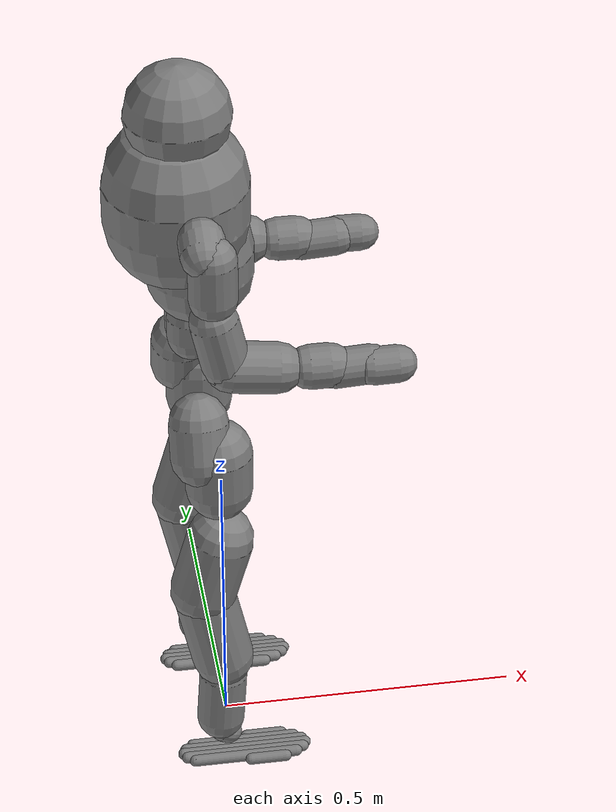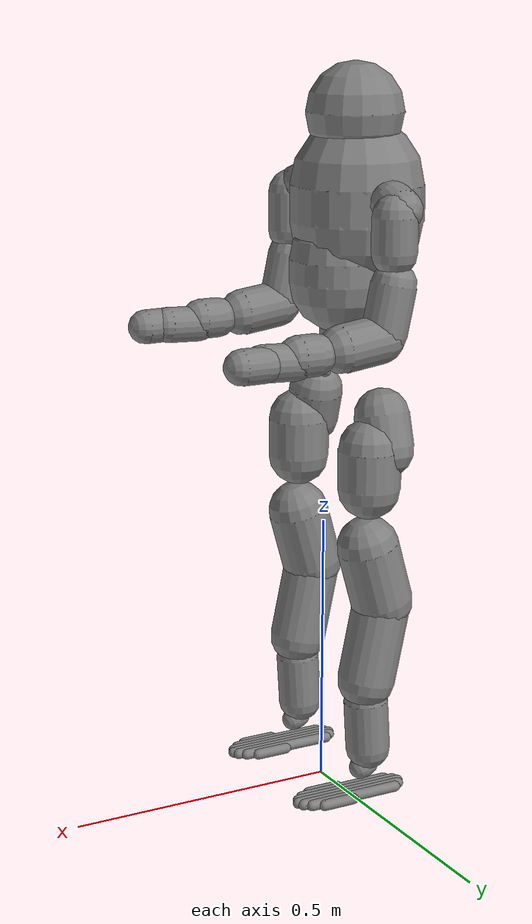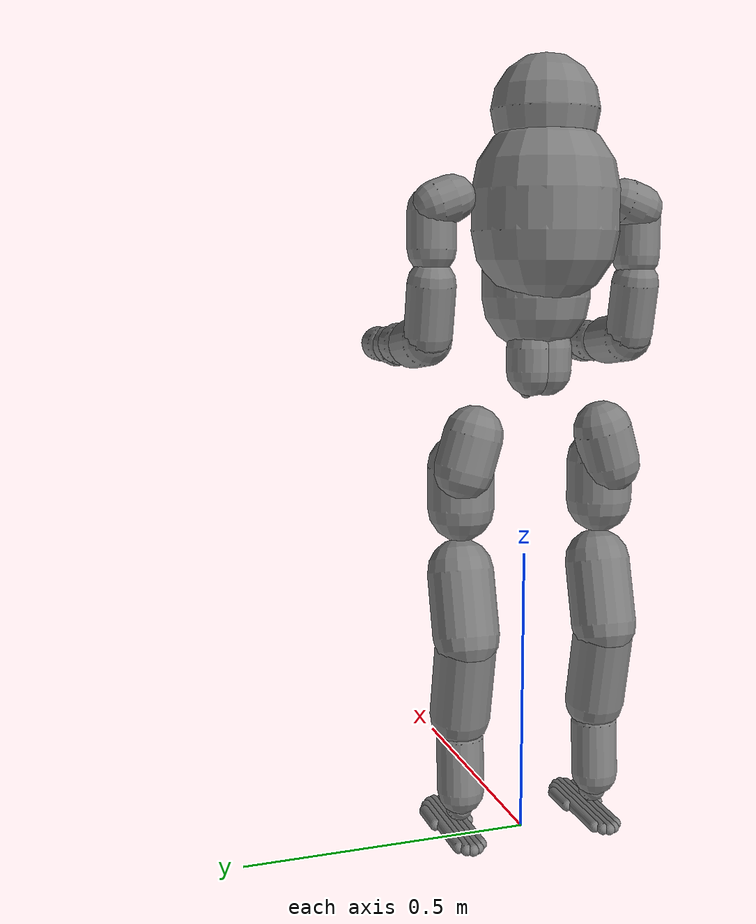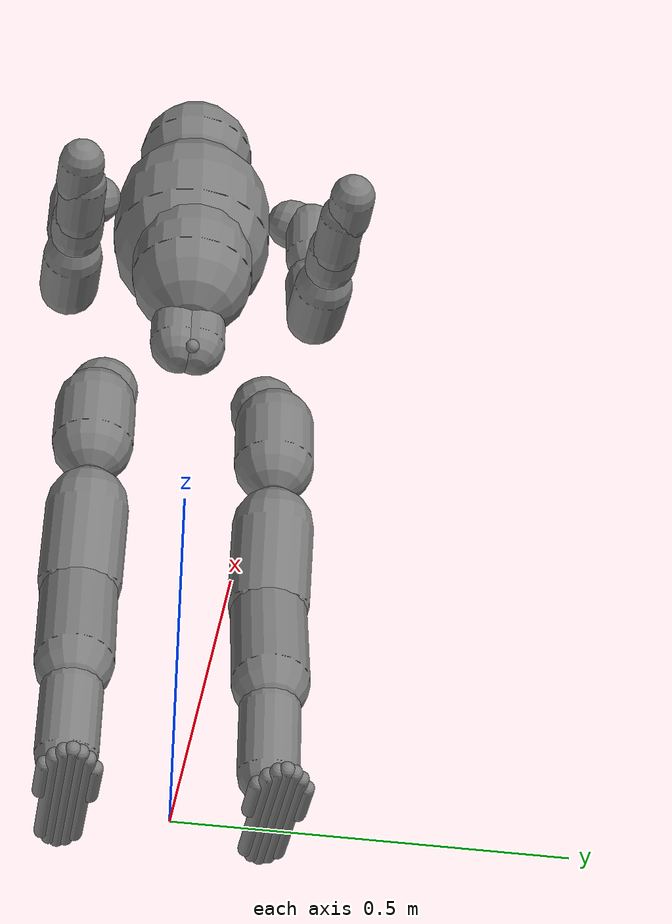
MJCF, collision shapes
<?xml version="1.0" encoding="utf-8"?>
<mujoco model="rp1.3.2">
  <compiler angle="radian" meshdir="../" autolimits="true" eulerseq="zyx" balanceinertia="true"/>
  <option timestep="0.005" integrator="implicitfast" iterations="100" solver="Newton" gravity="0 0 -9.81">
    <flag frictionloss="enable"/>
  </option>
  <size memory="32M"/>
  <default>
    <default class="RP1.3.2">
      <joint damping="0.01" frictionloss="0.01" armature="0.01"/>
      <default class="visual">
        <geom type="mesh" contype="0" conaffinity="0" group="2"/>
      </default>
      <default class="collision">
        <geom group="3" condim="4" contype="1" conaffinity="1" solref="0.01 1" friction="0.9 0.2 0.2"/>
      </default>
    </default>
  </default>
  <worldbody>
    <body name="base_link" pos="0 0 0.78" quat="1 0 0 0" childclass="RP1.3.2">
      <site name="imu" size="0.01" pos="0.0 0 0.0"/>
      <freejoint name="base_link_freejoint"/>
      <inertial pos="-0.03786057 -0.00301243 -0.04479345" mass="3.295" fullinertia="0.00960796 0.00699457 0.00815508 0.00000112 -0.00015116 -0.00000270"/>
      <geom type="mesh" class="visual" pos="0 0 0" quat="1 0 0 0" mesh="base_link" material="base_link_material"/>
      <!-- LEFT LEG -->
      <body name="left_hip_pitch_link" pos="-0.03843 0.062987 -0.051639" quat="1 0 0 0">
        <joint axis="0 1 0" name="left_hip_pitch_joint" type="hinge" range="-2.86 2.86" armature="0.029085325"/>
        <inertial pos="-0.00326988 0.05886633 -0.05765170" mass="1.83930168" fullinertia="0.00338343 0.00286182 0.00254132 0.00000610 -0.00000685 0.00030016"/>
        <geom type="mesh" class="visual" pos="0 0 0" quat="1 0 0 0" mesh="left_hip_pitch_link" material="left_hip_pitch_material"/>
        <geom name="left_hip_pitch_collision" type="capsule" class="collision" size="0.04970" fromto="-0.01122 0.06756 -0.06890 -0.01122 0.05070 -0.01118"/>
        <body name="left_hip_roll_link" pos="0.031915 0.061254 -0.060672" quat="1 0 0 0">
          <joint axis="1 0 0" name="left_hip_roll_joint" type="hinge" range="-0.74 2.6" armature="0.029085325"/>
          <inertial pos="-0.00518991 -0.00003499 -0.08084106" mass="1.473" fullinertia="0.00376408 0.00382823 0.00192275 0.00000313 -0.00065554 -0.00000256"/>
          <geom type="mesh" class="visual" pos="0 0 0" quat="1 0 0 0" mesh="left_hip_roll_link" material="left_hip_roll_material"/>
          <geom name="left_hip_roll_collision" type="capsule" class="collision" size="0.05622" fromto="-0.01270 0 -0.07578 -0.01270 0 -0.00658"/>
          <body name="left_hip_yaw_link" pos="-0.012698 0 -0.129" quat="1 0 0 0">
            <joint axis="0 0 -1" name="left_hip_yaw_joint" type="hinge" range="-2.76 2.76" armature="0.029085325"/>
            <inertial pos="-0.01959270 -0.00023200 -0.12376414" mass="2.483" fullinertia="0.01126838 0.01225761 0.00388513 0.00001684 -0.00196020 0.00002442"/>
            <geom type="mesh" class="visual" pos="0 0 0" quat="1 0 0 0" mesh="left_hip_yaw_link" material="left_hip_yaw_material"/>
            <geom name="left_hip_yaw_collision" type="capsule" class="collision" size="0.05622" fromto="-0.03046 0 -0.16235 -0.00001 0 -0.05622"/>
            <body name="left_knee_link" pos="-0.033201 -0.030809 -0.16509" quat="1 0 0 0">
              <joint axis="0 -1 0" name="left_knee_joint" type="hinge" range="-2.83 0.06" armature="0.029085325"/>
              <inertial pos="0.03105182 0.03046366 -0.13362250" mass="2.557" fullinertia="0.01819333 0.01828843 0.00291276 -0.00006969 -0.00019845 0.00002464"/>
              <geom type="mesh" class="visual" pos="0 0 0" quat="1 0 0 0" mesh="left_knee_link" material="left_knee_material"/>
              <geom name="left_knee_upper_collision" type="capsule" class="collision" size="0.0520" fromto="0.0330 0.03081 -0.1450 0.0030 0.03081 -0.0040"/>
              <geom name="left_knee_lower_collision" type="capsule" class="collision" size="0.0405" fromto="0.0270 0.03081 -0.2780 0.0330 0.03081 -0.1850"/>
              <body name="left_ankle_pitch_link" pos="0.03131 0.030811 -0.30533" quat="1 0 0 0">
                <joint axis="0 1 0" name="left_ankle_pitch_joint" type="hinge" range="-0.78 0.61" armature="0.01" frictionloss="0.05"/>
                <inertial pos="0.00126332 0.00000000 -0.01319163" mass="0.16605731" fullinertia="0.00003624 0.00004292 0.00002407 0.00000000 0.00000148 0.00000000"/>
                <geom type="mesh" class="visual" pos="0 0 0" quat="1 0 0 0" mesh="left_ankle_pitch_link" material="left_ankle_pitch_material"/>
                <geom name="left_ankle_pitch_collision" type="capsule" class="collision" size="0.02150" fromto="-0.00145 0 -0.00614 0.00959 0 -0.01051"/>
                <body name="left_ankle_roll_link" pos="0.013067 0 -0.018922" quat="1 0 0 0">
                  <joint axis="0.999993677858222 0 0.00355587451777954" name="left_ankle_roll_joint" type="hinge" range="-0.26 0.26" armature="0.01" frictionloss="0.05"/>
                  <inertial pos="0.008711 -0.000002 -0.021633" mass="0.6430" fullinertia="0.000361 0.001920 0.002002 0.000000 0.000123 0.000000"/>
                  <geom type="mesh" class="visual" pos="0 0 0" quat="1 0 0 0" mesh="left_ankle_roll_link" material="left_ankle_roll_material"/>
                  <geom name="left_foot_toe_neg_collision" type="capsule" class="collision" size="0.01" fromto="0.03 -0.03 -0.035 0.09 -0.03 -0.035"/>
                  <geom name="left_foot_outer_neg_collision" type="capsule" class="collision" size="0.01" fromto="-0.065 -0.02 -0.035 0.11 -0.02 -0.035"/>
                  <geom name="left_foot_inner_neg_collision" type="capsule" class="collision" size="0.01" fromto="-0.0775 -0.01 -0.035 0.1225 -0.01 -0.035"/>
                  <geom name="left_foot_center_collision" type="capsule" class="collision" size="0.01" fromto="-0.0825 0 -0.035 0.1275 0 -0.035"/>
                  <geom name="left_foot_inner_pos_collision" type="capsule" class="collision" size="0.01" fromto="-0.0775 0.01 -0.035 0.1225 0.01 -0.035"/>
                  <geom name="left_foot_outer_pos_collision" type="capsule" class="collision" size="0.01" fromto="-0.065 0.02 -0.035 0.11 0.02 -0.035"/>
                  <geom name="left_foot_toe_pos_collision" type="capsule" class="collision" size="0.01" fromto="0.03 0.03 -0.035 0.09 0.03 -0.035"/>
                </body>
              </body>
            </body>
          </body>
        </body>
      </body>
      <!-- RIGHT LEG -->
      <body name="right_hip_pitch_link" pos="-0.03843 -0.069013 -0.051639" quat="1 0 0 0">
        <joint axis="0 -1 0" name="right_hip_pitch_joint" type="hinge" range="-2.86 2.86" armature="0.029085325"/>
        <inertial pos="-0.00326831 -0.05867998 -0.05764945" mass="1.84174869" fullinertia="0.00339042 0.00287691 0.00253348 0.00000130 -0.00000978 -0.00029218"/>
        <geom type="mesh" class="visual" pos="0 0 0" quat="1 0 0 0" mesh="right_hip_pitch_link" material="right_hip_pitch_material"/>
        <geom name="right_hip_pitch_collision" type="capsule" class="collision" size="0.04970" fromto="-0.01122 -0.06756 -0.06890 -0.01122 -0.05070 -0.01118"/>
        <body name="right_hip_roll_link" pos="0.031915 -0.061254 -0.060672" quat="1 0 0 0">
          <joint axis="1 0 0" name="right_hip_roll_joint" type="hinge" range="-2.6 0.74" armature="0.029085325"/>
          <inertial pos="-0.00518991 -0.00003499 -0.08084106" mass="1.473" fullinertia="0.00376408 0.00382823 0.00192275 0.00000313 -0.00065554 -0.00000256"/>
          <geom type="mesh" class="visual" pos="0 0 0" quat="1 0 0 0" mesh="right_hip_roll_link" material="right_hip_roll_material"/>
          <geom name="right_hip_roll_collision" type="capsule" class="collision" size="0.05622" fromto="-0.01270 0 -0.07578 -0.01270 0 -0.00658"/>
          <body name="right_hip_yaw_link" pos="-0.012698 0 -0.129" quat="1 0 0 0">
            <joint axis="0 0 -1" name="right_hip_yaw_joint" type="hinge" range="-2.76 2.76" armature="0.029085325"/>
            <inertial pos="-0.01958069 0.00023065 -0.12376565" mass="2.483" fullinertia="0.01132547 0.01225907 0.00383024 -0.00001670 -0.00196009 -0.00002438"/>
            <geom type="mesh" class="visual" pos="0 0 0" quat="1 0 0 0" mesh="right_hip_yaw_link" material="right_hip_yaw_material"/>
            <geom name="right_hip_yaw_collision" type="capsule" class="collision" size="0.05622" fromto="-0.03046 0 -0.16235 -0.00001 0 -0.05622"/>
            <body name="right_knee_link" pos="-0.0332010004232152 0.0308089665012395 -0.165090022909223" quat="1 0 0 0">
              <joint axis="0 1 0" name="right_knee_joint" type="hinge" range="-0.06 2.83" armature="0.029085325"/>
              <inertial pos="0.03115290 -0.03066848 -0.13404559" mass="2.557" fullinertia="0.01802753 0.01813266 0.00288242 0.00006186 -0.00023263 0.00002714"/>
              <geom type="mesh" class="visual" pos="0 0 0" quat="1 0 0 0" mesh="right_knee_link" material="right_knee_material"/>
              <geom name="right_knee_upper_collision" type="capsule" class="collision" size="0.0520" fromto="0.0330 -0.03081 -0.1450 0.0030 -0.03081 -0.0040"/>
              <geom name="right_knee_lower_collision" type="capsule" class="collision" size="0.0405" fromto="0.0270 -0.03081 -0.2780 0.0330 -0.03081 -0.1850"/>
              <body name="right_ankle_pitch_link" pos="0.03131 -0.030809 -0.30533" quat="1 0 0 0">
                <joint axis="0 1 0" name="right_ankle_pitch_joint" type="hinge" range="-0.78 0.61" armature="0.01" frictionloss="0.05"/>
                <inertial pos="0.00126328 0.00000000 -0.01319163" mass="0.16605731" fullinertia="0.00003624 0.00004292 0.00002407 0.00000000 0.00000148 0.00000000"/>
                <geom type="mesh" class="visual" pos="0 0 0" quat="1 0 0 0" mesh="right_ankle_pitch_link" material="right_ankle_pitch_material"/>
                <geom name="right_ankle_pitch_collision" type="capsule" class="collision" size="0.02150" fromto="-0.00145 0 -0.00614 0.00959 0 -0.01051"/>
                <body name="right_ankle_roll_link" pos="0.013067 0 -0.018922" quat="1 0 0 0">
                  <joint axis="0.999993677858222 0 0.00355587451777984" name="right_ankle_roll_joint" type="hinge" range="-0.26 0.26" armature="0.01" frictionloss="0.05"/>
                  <inertial pos="0.008711 -0.000002 -0.021633" mass="0.6430" fullinertia="0.000361 0.001920 0.002002 0.000000 0.000123 0.000000"/>
                  <geom type="mesh" class="visual" pos="0 0 0" quat="1 0 0 0" mesh="right_ankle_roll_link" material="right_ankle_roll_material"/>
                  <geom name="right_foot_toe_neg_collision" type="capsule" class="collision" size="0.01" fromto="0.03 -0.03 -0.035 0.09 -0.03 -0.035"/>
                  <geom name="right_foot_outer_neg_collision" type="capsule" class="collision" size="0.01" fromto="-0.065 -0.02 -0.035 0.11 -0.02 -0.035"/>
                  <geom name="right_foot_inner_neg_collision" type="capsule" class="collision" size="0.01" fromto="-0.0775 -0.01 -0.035 0.1225 -0.01 -0.035"/>
                  <geom name="right_foot_center_collision" type="capsule" class="collision" size="0.01" fromto="-0.0825 0 -0.035 0.1275 0 -0.035"/>
                  <geom name="right_foot_inner_pos_collision" type="capsule" class="collision" size="0.01" fromto="-0.0775 0.01 -0.035 0.1225 0.01 -0.035"/>
                  <geom name="right_foot_outer_pos_collision" type="capsule" class="collision" size="0.01" fromto="-0.065 0.02 -0.035 0.11 0.02 -0.035"/>
                  <geom name="right_foot_toe_pos_collision" type="capsule" class="collision" size="0.01" fromto="0.03 0.03 -0.035 0.09 0.03 -0.035"/>
                </body>
              </body>
            </body>
          </body>
        </body>
      </body>
      <!-- WAIST -->
      <body name="waist_roll_link" pos="-0.00757994881845658 -0.00301269924435144 0.0529838303646947" quat="1 0 0 0">
        <joint axis="1 0 0" name="waist_roll_joint" type="hinge" range="-0.7 0.7" armature="0.029085325"/>
        <inertial pos="-0.03058205 0.00004115 -0.00029517" mass="1.53201882" fullinertia="0.00221249 0.00166198 0.00164327 -0.00000117 -0.00000777 -0.00000329"/>
        <geom type="mesh" class="visual" pos="0 0 0" quat="1 0 0 0" mesh="waist_roll_link" material="waist_roll_material"/>
        <geom name="waist_roll_neg_y_collision" type="capsule" class="collision" size="0.04164" fromto="-0.03686 -0.01336 -0.01336 -0.03686 -0.01336 0.02536"/>
        <geom name="waist_roll_pos_y_collision" type="capsule" class="collision" size="0.04164" fromto="-0.03686 0.01336 -0.01336 -0.03686 0.01336 0.02536"/>
        <body name="waist_yaw_link" pos="-0.0308449999997339 0 0.0679999999997294" quat="1 0 0 0">
          <joint axis="0 0 -1" name="waist_yaw_joint" type="hinge" range="-2.91 2.91" armature="0.029085325"/>
          <inertial pos="-0.001424 0.000080 0.128866" mass="8.3430" fullinertia="0.109179 0.092853 0.041145 -0.000027 0.002082 -0.000013"/>
          <geom type="mesh" class="visual" pos="0 0 0" quat="1 0 0 0" mesh="waist_yaw_link" material="waist_yaw_material"/>
          <geom name="torso_lower_collision" type="capsule" class="collision" size="0.090" fromto="0.0100 0 0.0394 0.0100 0 0.0800"/>
          <geom name="torso_middle_collision" type="capsule" class="collision" size="0.120" fromto="-0.0244 0 0.1450 -0.0244 0 0.2100"/>
          <geom name="torso_upper_collision" type="capsule" class="collision" size="0.088" fromto="-0.0185 0 0.3350 -0.0185 0 0.33668"/>
          <!-- LEFT ARM -->
          <body name="left_shoulder_pitch_link" pos="0 0.116496194698121 0.19848715574272" quat="1 0 0 0">
            <joint axis="0 0.99619 0.087156" name="left_shoulder_pitch_joint" type="hinge" range="-3.4 2.35" armature="0.01"/>
            <inertial pos="-0.00227488 0.05877203 -0.01145894" mass="0.82850012" fullinertia="0.00077624 0.00060519 0.00074547 0.00001858 -0.00000678 0.00008598"/>
            <geom type="mesh" class="visual" pos="0 0 0" quat="1 0 0 0" mesh="left_shoulder_pitch_link" material="left_shoulder_pitch_material"/>
            <geom name="left_shoulder_pitch_collision" type="capsule" class="collision" size="0.03808" fromto="-0.00326 0.03582 -0.00238 -0.00326 0.06284 -0.01210"/>
            <body name="left_shoulder_roll_link" pos="0.0287432951006891 0.0653494445514435 -0.014608906526987" quat="1 0 0 0">
              <joint axis="1 0 0" name="left_shoulder_roll_joint" type="hinge" range="-0.47 2.9" armature="0.01"/>
              <inertial pos="-0.01613398 0.00000564 -0.06609383" mass="0.76916758" fullinertia="0.00079857 0.00081142 0.00051033 0.00000012 -0.00012702 -0.00000004"/>
              <geom type="mesh" class="visual" pos="0 0 0" quat="1 0 0 0" mesh="left_shoulder_roll_link" material="left_shoulder_roll_material"/>
              <geom name="left_shoulder_roll_collision" type="capsule" class="collision" size="0.04000" fromto="-0.01906 0 -0.06800 -0.01906 0 -0.00656"/>
              <body name="left_shoulder_yaw_link" pos="-0.0190574930004302 0 -0.105000039994097" quat="1 0 0 0">
                <joint axis="0 0 -1" name="left_shoulder_yaw_joint" type="hinge" range="-2.87 2.87" armature="0.01"/>
                <inertial pos="0.01447570 -0.00112029 -0.08587480" mass="0.95227320" fullinertia="0.00179605 0.00188468 0.00081430 -0.00000292 0.00031386 -0.00001579"/>
                <geom type="mesh" class="visual" pos="0 0 0" quat="1 0 0 0" mesh="left_shoulder_yaw_link" material="left_shoulder_yaw_material"/>
                <geom name="left_shoulder_yaw_collision" type="capsule" class="collision" size="0.04008" fromto="0.01816 0.00008 -0.10150 0.00008 0.00008 -0.01708"/>
                <body name="left_elbow_link" pos="0.020796 -0.031888 -0.10414" quat="1 0 0 0">
                  <joint axis="0 -1 0" name="left_elbow_joint" type="hinge" range="-1.6 1.24" armature="0.01"/>
                  <inertial pos="0.07222795 0.03107894 -0.01809537" mass="0.77922872" fullinertia="0.00060310 0.00112121 0.00118539 -0.00005057 0.00006993 0.00001181"/>
                  <geom type="mesh" class="visual" pos="0 0 0" quat="1 0 0 0" mesh="left_elbow_link" material="left_elbow_material"/>
                  <geom name="left_elbow_collision" type="capsule" class="collision" size="0.04220" fromto="0.00487 0.03186 -0.00484 0.07959 0.03186 -0.01404"/>
                  <body name="left_wrist_roll_link" pos="0.116093381994033 0.031859446289993 -0.0187927584979322" quat="1 0 0 0">
                    <joint axis="1 0 0" name="left_wrist_roll_joint" type="hinge" range="-2.56 2.56" armature="0.01"/>
                    <inertial pos="0.01827024 0.00000000 0.01027564" mass="0.16115938" fullinertia="0.00013435 0.00015892 0.00014383 0.00000000 -0.00003765 0.00000000"/>
                    <geom type="mesh" class="visual" pos="0 0 0" quat="1 0 0 0" mesh="left_wrist_roll_link" material="left_wrist_roll_material"/>
                    <geom name="left_wrist_roll_collision" type="capsule" class="collision" size="0.03650" fromto="0.01445 0 0 0.04795 0 0"/>
                    <body name="left_wrist_yaw_link" pos="0.053 0 0.020701" quat="1 0 0 0">
                      <joint axis="0 0 -1" name="left_wrist_yaw_joint" type="hinge" range="-1.22 1.22" armature="0.01"/>
                      <inertial pos="0.03084697 0.00040090 -0.02788482" mass="1.03494219" fullinertia="0.00054429 0.00151988 0.00149427 -0.00001216 -0.00005099 -0.00000019"/>
                      <geom type="mesh" class="visual" pos="0 0 0" quat="1 0 0 0" mesh="left_wrist_yaw_link" material="left_wrist_yaw_material"/>
                      <geom name="left_wrist_yaw_collision" type="capsule" class="collision" size="0.03245" fromto="0 0 -0.02868 0.06213 0 -0.02538"/>
                      <body name="left_wrist_pitch_link" pos="0.062136 0.029458 -0.026067" quat="1 0 0 0">
                        <joint axis="0 1 0" name="left_wrist_pitch_joint" type="hinge" range="-1.22 1.22" armature="0.01"/>
                        <inertial pos="0.02303536 -0.00952864 0.00000000" mass="0.07319805" fullinertia="0.00003995 0.00005202 0.00006476 0.00001970 0.00000000 0.00000000"/>
                        <geom type="mesh" class="visual" pos="0 0 0" quat="1 0 0 0" mesh="left_wrist_pitch_link" material="left_wrist_pitch_material"/>
                        <geom name="left_wrist_pitch_collision" type="capsule" class="collision" size="0.03100" fromto="0 -0.02300 0 0.04200 -0.02372 0"/>
                      </body>
                    </body>
                  </body>
                </body>
              </body>
            </body>
          </body>
          <!-- RIGHT ARM -->
          <body name="right_shoulder_pitch_link" pos="0 -0.116496194698064 0.198487155742749" quat="1 0 0 0">
            <joint axis="0 -0.99619 0.087156" name="right_shoulder_pitch_joint" type="hinge" range="-2.35 3.4" armature="0.01"/>
            <inertial pos="-0.00227477 -0.05856201 -0.01145858" mass="0.82850796" fullinertia="0.00077392 0.00060520 0.00074316 -0.00001370 -0.00000678 -0.00008562"/>
            <geom type="mesh" class="visual" pos="0 0 0" quat="1 0 0 0" mesh="right_shoulder_pitch_link" material="right_shoulder_pitch_material"/>
            <geom name="right_shoulder_pitch_collision" type="capsule" class="collision" size="0.03808" fromto="-0.00326 -0.06284 -0.01210 -0.00326 -0.03582 -0.00238"/>
            <body name="right_shoulder_roll_link" pos="0.0287432951007422 -0.0653494445235536 -0.0146089065305009" quat="1 0 0 0">
              <joint axis="1 0 0" name="right_shoulder_roll_joint" type="hinge" range="-2.9 0.47" armature="0.01"/>
              <inertial pos="-0.01626203 0.00000539 -0.06810375" mass="0.80442734" fullinertia="0.00087815 0.00088810 0.00052415 0.00000011 -0.00013154 -0.00000005"/>
              <geom type="mesh" class="visual" pos="0 0 0" quat="1 0 0 0" mesh="right_shoulder_roll_link" material="right_shoulder_roll_material"/>
              <geom name="right_shoulder_roll_collision" type="capsule" class="collision" size="0.04000" fromto="-0.01906 0 -0.07700 -0.01906 0 -0.00656"/>
              <body name="right_shoulder_yaw_link" pos="-0.0190573923593691 0 -0.105000126276637" quat="1 0 0 0">
                <joint axis="0 0 -1" name="right_shoulder_yaw_joint" type="hinge" range="-2.87 2.87" armature="0.01"/>
                <inertial pos="0.01430772 0.00112150 -0.08592529" mass="0.95225273" fullinertia="0.00179792 0.00188417 0.00081194 -0.00000160 0.00031064 0.00001448"/>
                <geom type="mesh" class="visual" pos="0 0 0" quat="1 0 0 0" mesh="right_shoulder_yaw_link" material="right_shoulder_yaw_material"/>
                <geom name="right_shoulder_yaw_collision" type="capsule" class="collision" size="0.04008" fromto="0.01816 -0.00008 -0.10150 0.00008 -0.00008 -0.01708"/>
                <body name="right_elbow_link" pos="0.0207956801502895 0.031887525882762 -0.104135222723484" quat="1 0 0 0">
                  <joint axis="0 1 0" name="right_elbow_joint" type="hinge" range="-1.24 1.6" armature="0.01"/>
                  <inertial pos="0.07222795 -0.03090613 -0.01799316" mass="0.77922499" fullinertia="0.00060275 0.00112238 0.00118388 0.00005257 0.00007112 -0.00001226"/>
                  <geom type="mesh" class="visual" pos="0 0 0" quat="1 0 0 0" mesh="right_elbow_link" material="right_elbow_material"/>
                  <geom name="right_elbow_collision" type="capsule" class="collision" size="0.04220" fromto="0.00487 -0.03186 -0.00484 0.07959 -0.03186 -0.01404"/>
                  <body name="right_wrist_roll_link" pos="0.11609334409225 -0.031859369715491 -0.0187927299688337" quat="1 0 0 0">
                    <joint axis="1 0 0" name="right_wrist_roll_joint" type="hinge" range="-2.56 2.56" armature="0.01"/>
                    <inertial pos="0.01827024 0.00000000 0.01027555" mass="0.16115938" fullinertia="0.00013435 0.00015892 0.00014383 0.00000000 -0.00003765 0.00000000"/>
                    <geom type="mesh" class="visual" pos="0 0 0" quat="1 0 0 0" mesh="right_wrist_roll_link" material="right_wrist_roll_material"/>
                    <geom name="right_wrist_roll_collision" type="capsule" class="collision" size="0.03650" fromto="0.01445 0 0 0.04795 0 0"/>
                    <body name="right_wrist_yaw_link" pos="0.053 0 0.020701" quat="1 0 0 0">
                      <joint axis="0 0 -1" name="right_wrist_yaw_joint" type="hinge" range="-1.22 1.22" armature="0.01"/>
                      <inertial pos="0.03084434 -0.00041157 -0.02787816" mass="1.03493727" fullinertia="0.00054424 0.00152006 0.00149435 0.00001173 -0.00005112 0.00000048"/>
                      <geom type="mesh" class="visual" pos="0 0 0" quat="1 0 0 0" mesh="right_wrist_yaw_link" material="right_wrist_yaw_material"/>
                      <geom name="right_wrist_yaw_collision" type="capsule" class="collision" size="0.03245" fromto="0 0 -0.02868 0.06213 0 -0.02567"/>
                      <body name="right_wrist_pitch_link" pos="0.062136 -0.029458 -0.026067" quat="1 0 0 0">
                        <joint axis="0 -1 0" name="right_wrist_pitch_joint" type="hinge" range="-1.22 1.22" armature="0.01"/>
                        <inertial pos="0.02282168 0.00967600 0.00000000" mass="0.07221264" fullinertia="0.00003980 0.00005175 0.00006439 -0.00001987 0.00000000 0.00000000"/>
                        <geom type="mesh" class="visual" pos="0 0 0" quat="1 0 0 0" mesh="right_wrist_pitch_link" material="right_wrist_pitch_material"/>
                        <geom name="right_wrist_pitch_collision" type="capsule" class="collision" size="0.03100" fromto="0 0.02300 0 0.04200 0.02372 0"/>
                      </body>
                    </body>
                  </body>
                </body>
              </body>
            </body>
          </body>
        </body>
      </body>
    </body>
  </worldbody>
  <asset>
    <mesh file="meshes/base_link.STL"/>
    <mesh file="meshes/left_hip_pitch_link.STL"/>
    <mesh file="meshes/left_hip_roll_link.STL"/>
    <mesh file="meshes/left_hip_yaw_link.STL"/>
    <mesh file="meshes/left_knee_link.STL"/>
    <mesh file="meshes/left_ankle_pitch_link.STL"/>
    <mesh file="meshes/left_ankle_roll_link.STL"/>
    <mesh file="meshes/right_hip_pitch_link.STL"/>
    <mesh file="meshes/right_hip_roll_link.STL"/>
    <mesh file="meshes/right_hip_yaw_link.STL"/>
    <mesh file="meshes/right_knee_link.STL"/>
    <mesh file="meshes/right_ankle_pitch_link.STL"/>
    <mesh file="meshes/right_ankle_roll_link.STL"/>
    <mesh file="meshes/waist_roll_link.STL"/>
    <mesh file="meshes/waist_yaw_link.STL"/>
    <mesh file="meshes/left_shoulder_pitch_link.STL"/>
    <mesh file="meshes/left_shoulder_roll_link.STL"/>
    <mesh file="meshes/left_shoulder_yaw_link.STL"/>
    <mesh file="meshes/left_elbow_link.STL"/>
    <mesh file="meshes/left_wrist_roll_link.STL"/>
    <mesh file="meshes/left_wrist_pitch_link.STL"/>
    <mesh file="meshes/left_wrist_yaw_link.STL"/>
    <mesh file="meshes/right_shoulder_pitch_link.STL"/>
    <mesh file="meshes/right_shoulder_roll_link.STL"/>
    <mesh file="meshes/right_shoulder_yaw_link.STL"/>
    <mesh file="meshes/right_elbow_link.STL"/>
    <mesh file="meshes/right_wrist_roll_link.STL"/>
    <mesh file="meshes/right_wrist_pitch_link.STL"/>
    <mesh file="meshes/right_wrist_yaw_link.STL"/>
    <material name="base_link_material" rgba="0.752941 0.752941 0.752941 1"/>
    <material name="left_hip_pitch_material" rgba="0.752941 0.752941 0.752941 1"/>
    <material name="left_hip_roll_material" rgba="0.752941 0.752941 0.752941 1"/>
    <material name="left_hip_yaw_material" rgba="0.752941 0.752941 0.752941 1"/>
    <material name="left_knee_material" rgba="0.752941 0.752941 0.752941 1"/>
    <material name="left_ankle_pitch_material" rgba="0.650980 0.619608 0.588235 1"/>
    <material name="left_ankle_roll_material" rgba="0.752941 0.752941 0.752941 1"/>
    <material name="right_hip_pitch_material" rgba="0.752941 0.752941 0.752941 1"/>
    <material name="right_hip_roll_material" rgba="0.752941 0.752941 0.752941 1"/>
    <material name="right_hip_yaw_material" rgba="0.752941 0.752941 0.752941 1"/>
    <material name="right_knee_material" rgba="0.752941 0.752941 0.752941 1"/>
    <material name="right_ankle_pitch_material" rgba="0.650980 0.619608 0.588235 1"/>
    <material name="right_ankle_roll_material" rgba="0.752941 0.752941 0.752941 1"/>
    <material name="waist_roll_material" rgba="0.752941 0.752941 0.752941 1"/>
    <material name="waist_yaw_material" rgba="0.752941 0.752941 0.752941 1"/>
    <material name="left_shoulder_pitch_material" rgba="0.752941 0.752941 0.752941 1"/>
    <material name="left_shoulder_roll_material" rgba="0.752941 0.752941 0.752941 1"/>
    <material name="left_shoulder_yaw_material" rgba="0.752941 0.752941 0.752941 1"/>
    <material name="left_elbow_material" rgba="0.752941 0.752941 0.752941 1"/>
    <material name="left_wrist_roll_material" rgba="0.752941 0.752941 0.752941 1"/>
    <material name="left_wrist_pitch_material" rgba="0.752941 0.752941 0.752941 1"/>
    <material name="left_wrist_yaw_material" rgba="0.752941 0.752941 0.752941 1"/>
    <material name="right_shoulder_pitch_material" rgba="0.752941 0.752941 0.752941 1"/>
    <material name="right_shoulder_roll_material" rgba="0.752941 0.752941 0.752941 1"/>
    <material name="right_shoulder_yaw_material" rgba="0.752941 0.752941 0.752941 1"/>
    <material name="right_elbow_material" rgba="0.752941 0.752941 0.752941 1"/>
    <material name="right_wrist_roll_material" rgba="0.752941 0.752941 0.752941 1"/>
    <material name="right_wrist_pitch_material" rgba="0.752941 0.752941 0.752941 1"/>
    <material name="right_wrist_yaw_material" rgba="0.752941 0.752941 0.752941 1"/>
  </asset>
  <actuator>
    <motor class="RP1.3.2" gear="1" ctrlrange="-141.7 141.7" name="left_hip_pitch_joint" joint="left_hip_pitch_joint"/>
    <motor class="RP1.3.2" gear="1" ctrlrange="-141.7 141.7" name="left_hip_roll_joint" joint="left_hip_roll_joint"/>
    <motor class="RP1.3.2" gear="1" ctrlrange="-141.7 141.7" name="left_hip_yaw_joint" joint="left_hip_yaw_joint"/>
    <motor class="RP1.3.2" gear="1" ctrlrange="-141.7 141.7" name="left_knee_joint" joint="left_knee_joint"/>
    <motor class="RP1.3.2" gear="1" ctrlrange="-70.6 70.6" name="left_ankle_pitch_joint" joint="left_ankle_pitch_joint"/>
    <motor class="RP1.3.2" gear="1" ctrlrange="-70.6 70.6" name="left_ankle_roll_joint" joint="left_ankle_roll_joint"/>
    <motor class="RP1.3.2" gear="1" ctrlrange="-141.7 141.7" name="right_hip_pitch_joint" joint="right_hip_pitch_joint"/>
    <motor class="RP1.3.2" gear="1" ctrlrange="-141.7 141.7" name="right_hip_roll_joint" joint="right_hip_roll_joint"/>
    <motor class="RP1.3.2" gear="1" ctrlrange="-141.7 141.7" name="right_hip_yaw_joint" joint="right_hip_yaw_joint"/>
    <motor class="RP1.3.2" gear="1" ctrlrange="-141.7 141.7" name="right_knee_joint" joint="right_knee_joint"/>
    <motor class="RP1.3.2" gear="1" ctrlrange="-70.6 70.6" name="right_ankle_pitch_joint" joint="right_ankle_pitch_joint"/>
    <motor class="RP1.3.2" gear="1" ctrlrange="-70.6 70.6" name="right_ankle_roll_joint" joint="right_ankle_roll_joint"/>
    <motor class="RP1.3.2" gear="1" ctrlrange="-141.7 141.7" name="waist_roll_joint" joint="waist_roll_joint"/>
    <motor class="RP1.3.2" gear="1" ctrlrange="-141.7 141.7" name="waist_yaw_joint" joint="waist_yaw_joint"/>
    <motor class="RP1.3.2" gear="1" ctrlrange="-35.3 35.3" name="left_shoulder_pitch_joint" joint="left_shoulder_pitch_joint"/>
    <motor class="RP1.3.2" gear="1" ctrlrange="-35.3 35.3" name="left_shoulder_roll_joint" joint="left_shoulder_roll_joint"/>
    <motor class="RP1.3.2" gear="1" ctrlrange="-35.3 35.3" name="left_shoulder_yaw_joint" joint="left_shoulder_yaw_joint"/>
    <motor class="RP1.3.2" gear="1" ctrlrange="-35.3 35.3" name="left_elbow_joint" joint="left_elbow_joint"/>
    <motor class="RP1.3.2" gear="1" ctrlrange="-35.3 35.3" name="left_wrist_roll_joint" joint="left_wrist_roll_joint"/>
    <motor class="RP1.3.2" gear="1" ctrlrange="-35.3 35.3" name="left_wrist_yaw_joint" joint="left_wrist_yaw_joint"/>
    <motor class="RP1.3.2" gear="1" ctrlrange="-35.3 35.3" name="left_wrist_pitch_joint" joint="left_wrist_pitch_joint"/>
    <motor class="RP1.3.2" gear="1" ctrlrange="-35.3 35.3" name="right_shoulder_pitch_joint" joint="right_shoulder_pitch_joint"/>
    <motor class="RP1.3.2" gear="1" ctrlrange="-35.3 35.3" name="right_shoulder_roll_joint" joint="right_shoulder_roll_joint"/>
    <motor class="RP1.3.2" gear="1" ctrlrange="-35.3 35.3" name="right_shoulder_yaw_joint" joint="right_shoulder_yaw_joint"/>
    <motor class="RP1.3.2" gear="1" ctrlrange="-35.3 35.3" name="right_elbow_joint" joint="right_elbow_joint"/>
    <motor class="RP1.3.2" gear="1" ctrlrange="-35.3 35.3" name="right_wrist_roll_joint" joint="right_wrist_roll_joint"/>
    <motor class="RP1.3.2" gear="1" ctrlrange="-35.3 35.3" name="right_wrist_yaw_joint" joint="right_wrist_yaw_joint"/>
    <motor class="RP1.3.2" gear="1" ctrlrange="-35.3 35.3" name="right_wrist_pitch_joint" joint="right_wrist_pitch_joint"/>
  </actuator>
  <sensor>
    <framequat name="orientation" objtype="site" noise="0.001" objname="imu"/>
    <framepos name="position" objtype="site" noise="0.001" objname="imu"/>
    <gyro name="angular-velocity" site="imu" noise="0.005" cutoff="34.9"/>
    <velocimeter name="linear-velocity" site="imu" noise="0.001" cutoff="30"/>
    <accelerometer name="linear-acceleration" site="imu" noise="0.005" cutoff="157"/>
    <magnetometer name="magnetometer" site="imu"/>
  </sensor>
  <visual>
    <global offwidth="1920" offheight="1080"/>
  </visual>
</mujoco>
